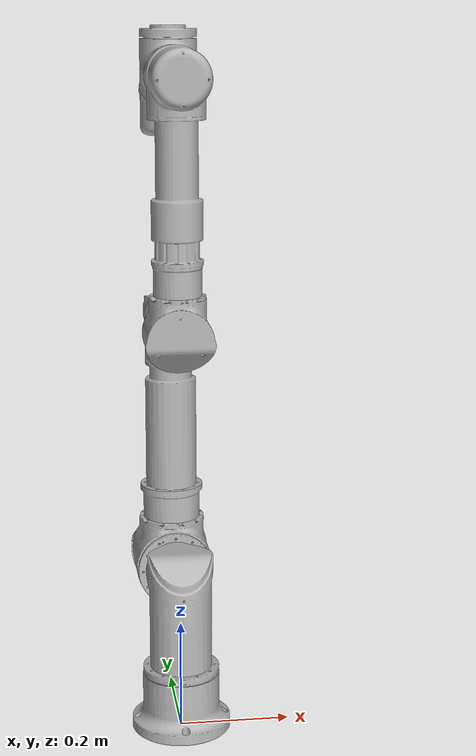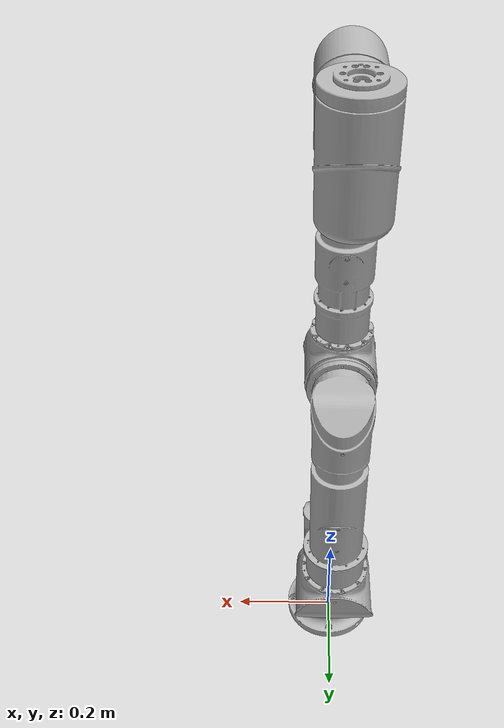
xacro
<?xml version="1.0"?>
<robot xmlns:xacro="http://ros.org/wiki/xacro"
       name="DianaS1" >

  <xacro:arg name="transmission_hw_interface" default="hardware_interface/PositionJointInterface"/>

  <!-- common stuff -->
  <xacro:include filename="$(find dianaS1_description)/urdf/common.gazebo.xacro" />

  <!-- DianaS1 -->
  <xacro:include filename="$(find dianaS1_description)/urdf/DianaS1.urdf.xacro" />

  <!-- arm -->
  <xacro:DianaS1_robot prefix="" joint_limited="true"
    joint1_limitL="${-90.0/180.0*pi}"  joint1_limitU="${90.0/180.0*pi}"
    joint2_limitL="${-160.0/180.0*pi}"    joint2_limitU="${0.0/180.0*pi}"
    joint3_limitL="${0.0/180.0*pi}"    joint3_limitU="${0.0/180.0*pi}"
    joint4_limitL="${-160.0/180.0*pi}"    joint4_limitU="${160.0/180.0*pi}"
    joint5_limitL="${-90.0/180.0*pi}"  joint5_limitU="${90.0/180.0*pi}"
    joint6_limitL="${-179.0/180.0*pi}"    joint6_limitU="${179.0/180.0*pi}"
    joint7_limitL="${0.0/180.0*pi}"    joint7_limitU="${0.0/180.0*pi}"
    transmission_hw_interface="$(arg transmission_hw_interface)"
  />

  <link name="world" />

  <joint name="world_joint" type="fixed">
    <parent link="world" />
    <child link = "base_link" />
    <origin xyz="0.0 0.0 0.0" rpy="0.0 0.0 0.0" />
  </joint>

</robot>

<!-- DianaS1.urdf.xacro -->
<robot xmlns:xacro="http://ros.org/wiki/xacro">

  <xacro:include filename="$(find dianaS1_description)/urdf/Diana.transmission.xacro" />
  <xacro:include filename="$(find dianaS1_description)/urdf/Diana.gazebo.xacro" />

  <xacro:macro name="DianaS1_robot" params="prefix joint_limited
    joint1_limitL:=${-179.0/180.0*pi}  joint1_limitU:=${179.0/180.0*pi}
    joint2_limitL:=${-160.0/180.0*pi}    joint2_limitU:=${160.0/180.0*pi}
    joint3_limitL:=${-179.0/180.0*pi}    joint3_limitU:=${179.0/180.0*pi}
    joint4_limitL:=${-160.0/180.0*pi}    joint4_limitU:=${160.0/180.0*pi}
    joint5_limitL:=${-179.0/180.0*pi}  joint5_limitU:=${179.0/180.0*pi}
    joint6_limitL:=${-179.0/180.0*pi}    joint6_limitU:=${179.0/180.0*pi}
    joint7_limitL:=${-179.0/180.0*pi}    joint7_limitU:=${179.0/180.0*pi}
    transmission_hw_interface:=hardware_interface/PositionJointInterface
    safety_limits:=false safety_pos_margin:=0.15
    safety_k_position:=20 safety_k_velocity:=0.0">

    <!-- Kinematic model -->
    <xacro:property name="d1" value="-0.27230" />
    <xacro:property name="d2" value="-0.15600" />
    <xacro:property name="d3" value="-0.45770" />
    <xacro:property name="d4" value="-0.13710" />
    <xacro:property name="d5" value="-0.44900" />
    <xacro:property name="d6" value="-0.13650" />
    <xacro:property name="d7" value="-0.08250" />

    <xacro:property name="a1" value="0.00000" />
    <xacro:property name="a2" value="0.00000" />
    <xacro:property name="a3" value="0.00000" />
    <xacro:property name="a4" value="0.00000" />
    <xacro:property name="a5" value="0.00000" />
    <xacro:property name="a6" value="0.00000" />
    <xacro:property name="a7" value="0.00000" />

    <xacro:property name="alpha1" value="${pi}" />
    <xacro:property name="alpha2" value="${-0.5*pi}" />
    <xacro:property name="alpha3" value="${0.5*pi}" />
    <xacro:property name="alpha4" value="${0.5*pi}" />
    <xacro:property name="alpha5" value="${-0.5*pi}" />
    <xacro:property name="alpha6" value="${-0.5*pi}" />
    <xacro:property name="alpha7" value="${0.5*pi}" />

    <xacro:property name="joint_effort" value="150.0" />
    <xacro:property name="joint_vel" value="${pi}" />
    <xacro:property name="joint_damp" value="0.0" />
    <xacro:property name="joint_frict" value="0.0" />

    <link name="${prefix}base_link">
      <inertial>
        <origin xyz="-0.00025974 -0.00026507 0.024973" rpy="0 0 0" />
        <mass value="1.61" />
        <inertia
          ixx="0.0042468"
          ixy="2.2962E-05"
          ixz="-7.5575E-06"
          iyy="0.004245"
          iyz="-7.4546E-06"
          izz="0.0072668" />
      </inertial>
      <visual>
        <origin yz="0 0 0" rpy="0 0 0" />
        <geometry>
          <mesh filename="package://dianaS1_description/meshes/base_link.STL" />
        </geometry>
        <material name="LightGrey">
          <color rgba="0.7 0.7 0.7 1" />
        </material>
      </visual>
      <collision>
        <origin xyz="0 0 0" rpy="0 0 0" />
        <geometry>
          <mesh filename="package://dianaS1_description/meshes/base_link.STL" />
        </geometry>
      </collision>
    </link>
    <joint name="${prefix}joint1" type="revolute">
      <origin xyz="0 0 ${-d1}" rpy="${alpha1} 0 0" />
      <parent link="${prefix}base_link" />
      <child link="${prefix}link1" />
      <axis xyz="0 0 1" />
      <limit lower="${joint1_limitL}" upper="${joint1_limitU}" effort="235.0" velocity="${joint_vel}" />
      <xacro:if value="${safety_limits}">
        <safety_controller soft_lower_limit="${joint1_limitL + safety_pos_margin}" soft_upper_limit="${joint1_limitU - safety_pos_margin}"
          k_position="${safety_k_position}" k_velocity="${safety_k_velocity}"/>
      </xacro:if>
      <dynamics damping="${joint_damp}" friction="${joint_frict}"/>
    </joint>
    <link name="${prefix}link1">
      <inertial>
        <origin xyz="-0.000108043 -0.044600027 0.068607373" rpy="0 0 0" />
        <mass value="6.67548" />
        <inertia
          ixx="0.113166041"
          ixy="-0.00000662439"
          ixz="0.0000384752"
          iyy="0.085738172"
          iyz="-0.0000471067"
          izz="0.04163282" />
      </inertial>
      <visual>
        <origin xyz="0 0 0" rpy="0 0 0" />
        <geometry>
          <mesh filename="package://dianaS1_description/meshes/link1.STL" />
        </geometry>
        <material name="LightGrey">
          <color rgba="0.7 0.7 0.7 1" />
        </material>
      </visual>
      <collision>
        <origin xyz="0 0 0" rpy="0 0 0" />
        <geometry>
          <mesh filename="package://dianaS1_description/meshes/link1.STL" />
        </geometry>
      </collision>
    </link>
    <joint name="${prefix}joint2" type="revolute">
      <origin xyz="0 ${d2} 0" rpy="${alpha2} 0 0" />
      <parent link="${prefix}link1" />
      <child link="${prefix}link2" />
      <axis xyz="0 0 1" />
      <limit lower="${joint2_limitL}" upper="${joint2_limitU}" effort="235.0" velocity="${joint_vel}" />
      <xacro:if value="${safety_limits}">
        <safety_controller soft_lower_limit="${joint2_limitL + safety_pos_margin}" soft_upper_limit="${joint2_limitU - safety_pos_margin}"
          k_position="${safety_k_position}" k_velocity="${safety_k_velocity}"/>
      </xacro:if>
      <dynamics damping="${joint_damp}" friction="${joint_frict}"/>
    </joint>
    <link name="${prefix}link2">
      <inertial>
        <origin xyz="0.00000875698 0.047132796 0.006996823" rpy="0 0 0" />
        <mass value="3.11643" />
        <inertia
          ixx="0.021414698"
          ixy="-0.0000012365"
          ixz="0.00000085133"
          iyy="0.006006288"
          iyz="0.000151513"
          izz="0.022441273" />
      </inertial>
      <visual>
        <origin xyz="0 0 0" rpy="0 0 0" />
        <geometry>
          <mesh filename="package://dianaS1_description/meshes/link2.STL" />
        </geometry>
        <material name="LightGrey">
          <color rgba="0.7 0.7 0.7 1" />
        </material>
      </visual>
      <collision>
        <origin xyz="0 0 0" rpy="0 0 0" />
        <geometry>
          <mesh filename="package://dianaS1_description/meshes/link2.STL" />
        </geometry>
      </collision>
    </link>
    <joint name="${prefix}joint3" type="revolute">
      <origin xyz="0 ${-d3} 0" rpy="${alpha3} 0 0" />
      <parent link="${prefix}link2" />
      <child link="${prefix}link3" />
      <axis xyz="0 0 1" />
      <limit lower="${joint3_limitL}" upper="${joint3_limitU}" effort="111.0" velocity="${joint_vel}" />
      <xacro:if value="${safety_limits}">
        <safety_controller soft_lower_limit="${joint3_limitL + safety_pos_margin}" soft_upper_limit="${joint3_limitU - safety_pos_margin}"
          k_position="${safety_k_position}" k_velocity="${safety_k_velocity}"/>
      </xacro:if>
      <dynamics damping="${joint_damp}" friction="${joint_frict}"/>
    </joint>
    <link name="${prefix}link3">
      <inertial>
        <origin xyz="0.0000183253 0.03187396 0.136688085" rpy="0 0 0" />
        <mass value="4.62614" />
        <inertia
          ixx="0.198692057"
          ixy="0.00000537943"
          ixz="0.0000108296"
          iyy="0.187330776"
          iyz="-0.00026749"
          izz="0.018225492" />
      </inertial>
      <visual>
        <origin xyz="0 0 0" rpy="0 0 0" />
        <geometry>
          <mesh filename="package://dianaS1_description/meshes/link3.STL" />
        </geometry>
        <material name="LightGrey">
          <color rgba="0.7 0.7 0.7 1" />
        </material>
      </visual>
      <collision>
        <origin xyz="0 0 0" rpy="0 0 0" />
        <geometry>
          <mesh filename="package://dianaS1_description/meshes/link3.STL" />
        </geometry>
      </collision>
    </link>
    <joint name="${prefix}joint4" type="revolute">
      <origin xyz="0 ${-d4} 0" rpy="${alpha4} 0 0" />
      <parent link="${prefix}link3" />
      <child link="${prefix}link4" />
      <axis xyz="0 0 1" />
      <limit lower="${joint4_limitL}" upper="${joint4_limitU}" effort="111.0" velocity="${joint_vel}" />
      <xacro:if value="${safety_limits}">
        <safety_controller soft_lower_limit="${joint4_limitL + safety_pos_margin}" soft_upper_limit="${joint4_limitU - safety_pos_margin}"
          k_position="${safety_k_position}" k_velocity="${safety_k_velocity}"/>
      </xacro:if>
      <dynamics damping="${joint_damp}" friction="${joint_frict}"/>
    </joint>
    <link name="${prefix}link4">
      <inertial>
        <origin xyz="-0.0000171058 -0.048491536 0.007150206" rpy="0 0 0" />
        <mass value="1.9961" />
        <inertia
          ixx="0.012642755"
          ixy="-0.00000163658"
          ixz="0.00000012834"
          iyy="0.002906848"
          iyz="-0.0000516913"
          izz="0.012740515" />
      </inertial>
      <visual>
        <origin xyz="0 0 0" rpy="0 0 0" />
        <geometry>
          <mesh filename="package://dianaS1_description/meshes/link4.STL" />
        </geometry>
        <material name="LightGrey">
          <color rgba="0.7 0.7 0.7 1" />
        </material>
      </visual>
      <collision>
        <origin xyz="0 0 0" rpy="0 0 0" />
        <geometry>
          <mesh filename="package://dianaS1_description/meshes/link4.STL" />
        </geometry>
      </collision>
    </link>
    <joint name="${prefix}joint5" type="revolute">
      <origin xyz="0 ${d5} 0" rpy="${alpha5} 0 0" />
      <parent link="${prefix}link4" />
      <child link="${prefix}link5" />
      <axis xyz="0 0 1" />
      <limit lower="${joint5_limitL}" upper="${joint5_limitU}" effort="90.0" velocity="${joint_vel}" />
      <xacro:if value="${safety_limits}">
        <safety_controller soft_lower_limit="${joint5_limitL + safety_pos_margin}" soft_upper_limit="${joint5_limitU - safety_pos_margin}"
          k_position="${safety_k_position}" k_velocity="${safety_k_velocity}"/>
      </xacro:if>
      <dynamics damping="${joint_damp}" friction="${joint_frict}"/>
    </joint>
    <link name="${prefix}link5">
      <inertial>
        <origin xyz="-0.000027456 -0.002120073 0.13041583" rpy="0 0 0" />
        <mass value="3.40632" />
        <inertia
          ixx="0.129484072"
          ixy="0.00000023257"
          ixz="0.00000830368"
          iyy="0.128743236"
          iyz="-0.0000756544"
          izz="0.004813837" />
      </inertial>
      <visual>
        <origin xyz="0 0 0" rpy="0 0 0" />
        <geometry>
          <mesh filename="package://dianaS1_description/meshes/link5.STL" />
        </geometry>
        <material name="LightGrey">
          <color rgba="0.7 0.7 0.7 1" />
        </material>
      </visual>
      <collision>
        <origin xyz="0 0 0" rpy="0 0 0" />
        <geometry>
          <mesh filename="package://dianaS1_description/meshes/link5.STL" />
        </geometry>
      </collision>
    </link>
    <joint name="${prefix}joint6" type="revolute">
      <origin xyz="0 ${d6} 0" rpy="${alpha6} 0 0" />
      <parent link="${prefix}link5" />
      <child link="${prefix}link6" />
      <axis xyz="0 0 1" />
      <limit lower="${joint6_limitL}" upper="${joint6_limitU}" effort="90.0" velocity="${joint_vel}" />
      <xacro:if value="${safety_limits}">
        <safety_controller soft_lower_limit="${joint6_limitL + safety_pos_margin}" soft_upper_limit="${joint6_limitU - safety_pos_margin}"
          k_position="${safety_k_position}" k_velocity="${safety_k_velocity}"/>
      </xacro:if>
      <dynamics damping="${joint_damp}" friction="${joint_frict}"/>
    </joint>
    <link name="${prefix}link6">
      <inertial>
        <origin xyz="0.0000262506 0.003206123 0.027090603" rpy="0 0 0" />
        <mass value="2.31124" />
        <inertia
          ixx="0.008348207"
          ixy="-0.00000063196"
          ixz="-0.0000036489"
          iyy="0.007600004"
          iyz="0.0000308886"
          izz="0.003426032" />
      </inertial>
      <visual>
        <origin xyz="0 0 0" rpy="0 0 0" />
        <geometry>
          <mesh filename="package://dianaS1_description/meshes/link6.STL" />
        </geometry>
        <material name="LightGrey">
          <color rgba="0.7 0.7 0.7 1" />
        </material>
      </visual>
      <collision>
        <origin xyz="0 0 0" rpy="0 0 0" />
        <geometry>
          <mesh filename="package://dianaS1_description/meshes/link6.STL" />
        </geometry>
      </collision>
    </link>
    <joint name="${prefix}joint7" type="revolute">
      <origin xyz="0 ${-d7} 0" rpy="${alpha7} 0 0" />
      <parent link="${prefix}link6" />
      <child link="${prefix}link7" />
      <axis xyz="0 0 1" />
      <limit lower="${joint7_limitL}" upper="${joint7_limitU}" effort="90.0" velocity="${joint_vel}" />
      <xacro:if value="${safety_limits}">
        <safety_controller soft_lower_limit="${joint7_limitL + safety_pos_margin}" soft_upper_limit="${joint7_limitU - safety_pos_margin}"
          k_position="${safety_k_position}" k_velocity="${safety_k_velocity}"/>
      </xacro:if>
      <dynamics damping="${joint_damp}" friction="${joint_frict}"/>
    </joint>
    <link name="${prefix}link7">
      <inertial>
        <origin xyz="0.0 0.0001 0.03405" rpy="0 0 0" />
        <mass value="0.53497" />
        <inertia
          ixx="0.001391424"
          ixy="-0.0000002188"
          ixz="0.00000014776"
          iyy="0.001391382"
          iyz="-0.00000139675"
          izz="0.000430176" />
      </inertial>
      <visual>
        <origin xyz="0 0 0" rpy="0 0 0" />
        <geometry>
          <mesh filename="package://dianaS1_description/meshes/link7.STL" />
        </geometry>
        <material name="LightGrey">
          <color rgba="0.7 0.7 0.7 1" />
        </material>
      </visual>
      <collision>
        <origin xyz="0 0 0" rpy="0 0 0" />
        <geometry>
          <mesh filename="package://dianaS1_description/meshes/link7.STL" />
        </geometry>
      </collision>
    </link>

    <xacro:Diana_arm_transmission prefix="${prefix}" hw_interface="${transmission_hw_interface}" />
    <xacro:Diana_arm_gazebo prefix="${prefix}" />

  </xacro:macro>
</robot>
